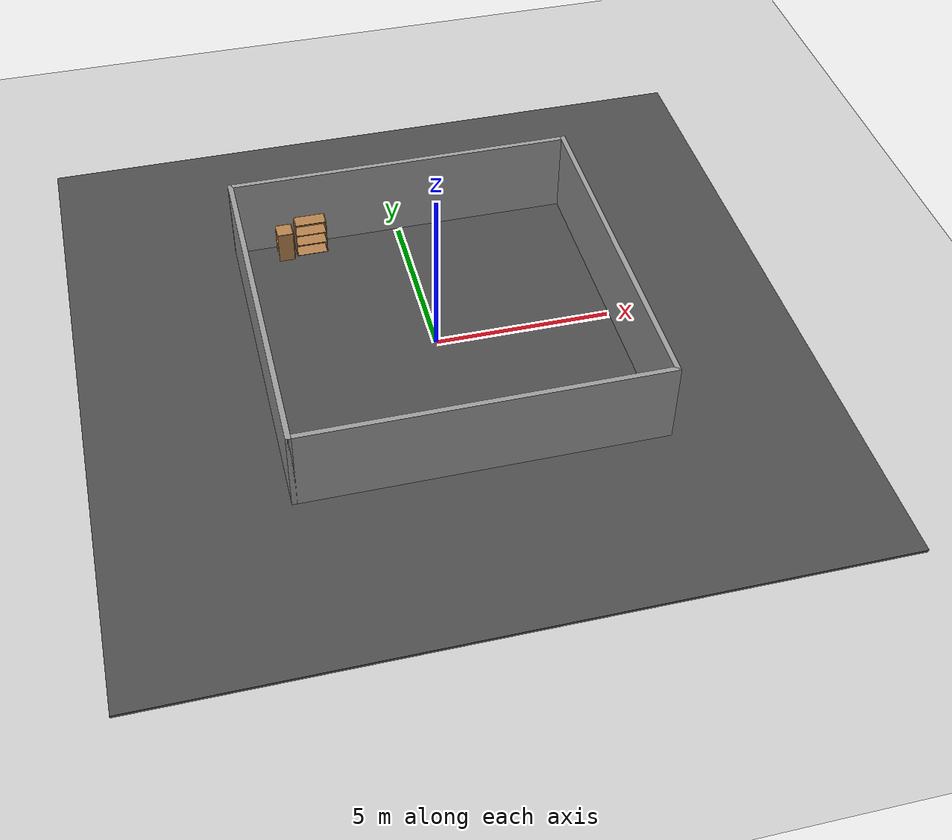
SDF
<sdf version="1.6">
 <world name="default">
  <light name="sun" type="directional">
   <pose>0 0 10 0 -0 0</pose>
   <diffuse>0.8 0.8 0.8 1</diffuse>
   <specular>0.2 0.2 0.2 1</specular>
   <attenuation>
    <range>1000</range>
    <constant>0.9</constant>
    <linear>0.01</linear>
    <quadratic>0.001</quadratic>
   </attenuation>
   <direction>-0.5 0.1 -0.9</direction>
  </light>
  <model name="ground_plane">
   <static>1</static>
   <link name="link">
    <collision name="collision">
     <geometry><plane><normal>0 0 1</normal><size>100 100</size></plane></geometry>
     <surface><friction><ode><mu>100</mu><mu2>50</mu2></ode></friction></surface>
    </collision>
    <visual name="visual">
     <cast_shadows>0</cast_shadows>
     <geometry><plane><normal>0 0 1</normal><size>100 100</size></plane></geometry>
     <material>
      <script><uri>file://media/materials/scripts/gazebo.material</uri><name>Gazebo/Grey</name></script>
     </material>
    </visual>
   </link>
  </model>
  <gravity>0 0 -9.8</gravity>
  <magnetic_field>6e-06 2.3e-05 -4.2e-05</magnetic_field>
  <atmosphere type="adiabatic"/>
  <physics name="default_physics" default="0" type="ode">
   <max_step_size>0.001</max_step_size>
   <real_time_factor>1</real_time_factor>
   <real_time_update_rate>1000</real_time_update_rate>
  </physics>
  <scene><ambient>0.4 0.4 0.4 1</ambient><background>0.7 0.7 0.7 1</background><shadows>1</shadows></scene>
  <audio><device>default</device></audio>
  <spherical_coordinates>
   <surface_model>EARTH_WGS84</surface_model>
   <latitude_deg>0</latitude_deg>
   <longitude_deg>0</longitude_deg>
   <elevation>0</elevation>
   <heading_deg>0</heading_deg>
  </spherical_coordinates>
  <model name="Untitled">
   <pose>0.11691 0.149329 0 0 -0 0</pose>
   <link name="Wall_0">
    <collision name="Wall_0_Collision">
     <geometry><box><size>10.15 0.15 2.5</size></box></geometry>
     <pose>0 0 1.25 0 -0 0</pose>
    </collision>
    <visual name="Wall_0_Visual">
     <pose>0 0 1.25 0 -0 0</pose>
     <geometry><box><size>10.15 0.15 2.5</size></box></geometry>
     <material>
      <script><uri>file://media/materials/scripts/gazebo.material</uri><name>Gazebo/Grey</name></script>
      <ambient>1 1 1 1</ambient>
     </material>
     <meta><layer>0</layer></meta>
    </visual>
    <pose>5 0 0 0 -0 1.5708</pose>
   </link>
   <link name="Wall_3">
    <collision name="Wall_3_Collision">
     <geometry><box><size>10.15 0.15 2.5</size></box></geometry>
     <pose>0 0 1.25 0 -0 0</pose>
    </collision>
    <visual name="Wall_3_Visual">
     <pose>0 0 1.25 0 -0 0</pose>
     <geometry><box><size>10.15 0.15 2.5</size></box></geometry>
     <material>
      <script><uri>file://media/materials/scripts/gazebo.material</uri><name>Gazebo/Grey</name></script>
      <ambient>1 1 1 1</ambient>
     </material>
     <meta><layer>0</layer></meta>
    </visual>
    <pose>0 5 0 0 -0 3.14159</pose>
   </link>
   <link name="Wall_7">
    <collision name="Wall_7_Collision">
     <geometry><box><size>10.15 0.15 2.5</size></box></geometry>
     <pose>0 0 1.25 0 -0 0</pose>
    </collision>
    <visual name="Wall_7_Visual">
     <pose>0 0 1.25 0 -0 0</pose>
     <geometry><box><size>10.15 0.15 2.5</size></box></geometry>
     <material>
      <script><uri>file://media/materials/scripts/gazebo.material</uri><name>Gazebo/Grey</name></script>
      <ambient>1 1 1 1</ambient>
     </material>
     <meta><layer>0</layer></meta>
    </visual>
    <pose>-5 0 0 0 -0 -1.5708</pose>
   </link>
   <link name="Wall_9">
    <collision name="Wall_9_Collision">
     <geometry><box><size>10.15 0.15 2.5</size></box></geometry>
     <pose>0 0 1.25 0 -0 0</pose>
    </collision>
    <visual name="Wall_9_Visual">
     <pose>0 0 1.25 0 -0 0</pose>
     <geometry><box><size>10.15 0.15 2.5</size></box></geometry>
     <material>
      <script><uri>file://media/materials/scripts/gazebo.material</uri><name>Gazebo/Grey</name></script>
      <ambient>1 1 1 1</ambient>
     </material>
     <meta><layer>0</layer></meta>
    </visual>
    <pose>0 -5 0 0 -0 0</pose>
   </link>
   <static>1</static>
  </model>
  <model name="bookshelf">
   <static>1</static>
   <link name="link">
    <inertial><mass>1</mass></inertial>
    <collision name="back">
     <pose>0 0.005 0.6 0 -0 0</pose>
     <geometry><box><size>0.9 0.01 1.2</size></box></geometry>
    </collision>
    <visual name="visual1">
     <pose>0 0.005 0.6 0 -0 0</pose>
     <geometry><box><size>0.9 0.01 1.2</size></box></geometry>
     <material>
      <script><uri>file://media/materials/scripts/gazebo.material</uri><name>Gazebo/Wood</name></script>
     </material>
    </visual>
    <collision name="left_side">
     <pose>0.45 -0.195 0.6 0 -0 0</pose>
     <geometry><box><size>0.02 0.4 1.2</size></box></geometry>
    </collision>
    <visual name="visual2">
     <pose>0.45 -0.195 0.6 0 -0 0</pose>
     <geometry><box><size>0.02 0.4 1.2</size></box></geometry>
     <material>
      <script><uri>file://media/materials/scripts/gazebo.material</uri><name>Gazebo/Wood</name></script>
     </material>
    </visual>
    <collision name="right_side">
     <pose>-0.45 -0.195 0.6 0 -0 0</pose>
     <geometry><box><size>0.02 0.4 1.2</size></box></geometry>
    </collision>
    <visual name="visual3">
     <pose>-0.45 -0.195 0.6 0 -0 0</pose>
     <geometry><box><size>0.02 0.4 1.2</size></box></geometry>
     <material>
      <script><uri>file://media/materials/scripts/gazebo.material</uri><name>Gazebo/Wood</name></script>
     </material>
    </visual>
    <collision name="bottom">
     <pose>0 -0.195 0.03 0 -0 0</pose>
     <geometry><box><size>0.88 0.4 0.06</size></box></geometry>
    </collision>
    <visual name="visual4">
     <pose>0 -0.195 0.03 0 -0 0</pose>
     <geometry><box><size>0.88 0.4 0.06</size></box></geometry>
     <material>
      <script><uri>file://media/materials/scripts/gazebo.material</uri><name>Gazebo/Wood</name></script>
     </material>
    </visual>
    <collision name="top">
     <pose>0 -0.195 1.19 0 -0 0</pose>
     <geometry><box><size>0.88 0.4 0.02</size></box></geometry>
    </collision>
    <visual name="visual5">
     <pose>0 -0.195 1.19 0 -0 0</pose>
     <geometry><box><size>0.88 0.4 0.02</size></box></geometry>
     <material>
      <script><uri>file://media/materials/scripts/gazebo.material</uri><name>Gazebo/Wood</name></script>
     </material>
    </visual>
    <collision name="low_shelf">
     <pose>0 -0.195 0.43 0 -0 0</pose>
     <geometry><box><size>0.88 0.4 0.02</size></box></geometry>
    </collision>
    <visual name="visual6">
     <pose>0 -0.195 0.43 0 -0 0</pose>
     <geometry><box><size>0.88 0.4 0.02</size></box></geometry>
     <material>
      <script><uri>file://media/materials/scripts/gazebo.material</uri><name>Gazebo/Wood</name></script>
     </material>
    </visual>
    <collision name="high_shelf">
     <pose>0 -0.195 0.8 0 -0 0</pose>
     <geometry><box><size>0.88 0.4 0.02</size></box></geometry>
    </collision>
    <visual name="visual7">
     <pose>0 -0.195 0.8 0 -0 0</pose>
     <geometry><box><size>0.88 0.4 0.02</size></box></geometry>
     <material>
      <script><uri>file://media/materials/scripts/gazebo.material</uri><name>Gazebo/Wood</name></script>
     </material>
    </visual>
   </link>
   <pose>-2.72611 4.9059 0 0 -0 0</pose>
  </model>
  <model name="cabinet">
   <static>1</static>
   <link name="cabinet_bottom_plate">
    <inertial>
     <pose>0 0 -1 0 -0 0</pose>
     <inertia><ixx>2.05</ixx><ixy>0</ixy><ixz>0</ixz><iyy>2.05</iyy><iyz>0</iyz><izz>2.05</izz></inertia>
     <mass>25</mass>
    </inertial>
    <collision name="cabinet_bottom_plate_geom">
     <pose>0 0 0.01 0 -0 0</pose>
     <geometry><box><size>0.45 0.45 0.02</size></box></geometry>
    </collision>
    <visual name="cabinet_bottom_plate_geom_visual">
     <pose>0 0 0.01 0 -0 0</pose>
     <geometry><box><size>0.45 0.45 0.02</size></box></geometry>
     <material>
      <script><uri>file://media/materials/scripts/gazebo.material</uri><name>Gazebo/Wood</name></script>
     </material>
    </visual>
    <collision name="cabinet_bottom_plate_geom_cabinet_back_plate">
     <pose>0.235 0 0.51 0 -0 0</pose>
     <geometry><box><size>0.02 0.45 1.02</size></box></geometry>
    </collision>
    <visual name="cabinet_bottom_plate_geom_cabinet_back_plate_visual">
     <pose>0.235 0 0.51 0 -0 0</pose>
     <geometry><box><size>0.02 0.45 1.02</size></box></geometry>
     <material>
      <script><uri>file://media/materials/scripts/gazebo.material</uri><name>Gazebo/Wood</name></script>
     </material>
    </visual>
    <collision name="cabinet_bottom_plate_geom_cabinet_left_plate">
     <pose>0 0.235 0.51 0 -0 0</pose>
     <geometry><box><size>0.45 0.02 1.02</size></box></geometry>
    </collision>
    <visual name="cabinet_bottom_plate_geom_cabinet_left_plate_visual">
     <pose>0 0.235 0.51 0 -0 0</pose>
     <geometry><box><size>0.45 0.02 1.02</size></box></geometry>
     <material>
      <script><uri>file://media/materials/scripts/gazebo.material</uri><name>Gazebo/Wood</name></script>
     </material>
    </visual>
    <collision name="cabinet_bottom_plate_geom_cabinet_middle_plate">
     <pose>0 0 0.51 0 -0 0</pose>
     <geometry><box><size>0.45 0.45 0.02</size></box></geometry>
    </collision>
    <visual name="cabinet_bottom_plate_geom_cabinet_middle_plate_visual">
     <pose>0 0 0.51 0 -0 0</pose>
     <geometry><box><size>0.45 0.45 0.02</size></box></geometry>
     <material>
      <script><uri>file://media/materials/scripts/gazebo.material</uri><name>Gazebo/Wood</name></script>
     </material>
    </visual>
    <collision name="cabinet_bottom_plate_geom_cabinet_right_plate">
     <pose>0 -0.235 0.51 0 -0 0</pose>
     <geometry><box><size>0.45 0.02 1.02</size></box></geometry>
    </collision>
    <visual name="cabinet_bottom_plate_geom_cabinet_right_plate_visual">
     <pose>0 -0.235 0.51 0 -0 0</pose>
     <geometry><box><size>0.45 0.02 1.02</size></box></geometry>
     <material>
      <script><uri>file://media/materials/scripts/gazebo.material</uri><name>Gazebo/Wood</name></script>
     </material>
    </visual>
    <collision name="cabinet_bottom_plate_geom_cabinet_top_plate">
     <pose>0 0 1.01 0 -0 0</pose>
     <geometry><box><size>0.45 0.45 0.02</size></box></geometry>
    </collision>
    <visual name="cabinet_bottom_plate_geom_cabinet_top_plate_visual">
     <pose>0 0 1.01 0 -0 0</pose>
     <geometry><box><size>0.45 0.45 0.02</size></box></geometry>
     <material>
      <script><uri>file://media/materials/scripts/gazebo.material</uri><name>Gazebo/Wood</name></script>
     </material>
    </visual>
   </link>
   <pose>-3.51188 4.63842 0 0 -0 0</pose>
  </model>
  <model name="asphalt_plane">
   <static>1</static>
   <link name="link">
    <collision name="collision"><geometry><box><size>20 20 0.1</size></box></geometry></collision>
    <visual name="visual">
     <cast_shadows>0</cast_shadows>
     <geometry><box><size>20 20 0.1</size></box></geometry>
     <material>
      <script>
       <uri>model://asphalt_plane/materials/scripts</uri>
       <uri>model://asphalt_plane/materials/textures</uri>
       <name>vrc/asphalt</name>
      </script>
     </material>
    </visual>
   </link>
   <pose>0.057397 -0.016133 0 0 0 -0.000747</pose>
  </model>
  <model name="asphalt_plane">
   <static>1</static>
   <link name="link">
    <collision name="collision"><geometry><box><size>20 20 0.1</size></box></geometry></collision>
    <visual name="visual">
     <cast_shadows>0</cast_shadows>
     <geometry><box><size>20 20 0.1</size></box></geometry>
     <material>
      <script>
       <uri>model://asphalt_plane/materials/scripts</uri>
       <uri>model://asphalt_plane/materials/textures</uri>
       <name>vrc/asphalt</name>
      </script>
     </material>
    </visual>
   </link>
   <pose>0.057397 -0.016133 0 0 0 -0.000747</pose>
  </model>
  <model name="table">
   <static>1</static>
   <link name="link">
    <collision name="surface">
     <pose>0 0 1 0 -0 0</pose>
     <geometry><box><size>1.5 0.8 0.03</size></box></geometry>
     <surface><friction><ode><mu>0.6</mu><mu2>0.6</mu2></ode></friction></surface>
    </collision>
    <visual name="visual1">
     <pose>0 0 1 0 -0 0</pose>
     <geometry><box><size>1.5 0.8 0.03</size></box></geometry>
     <material>
      <script><uri>file://media/materials/scripts/gazebo.material</uri><name>Gazebo/Wood</name></script>
     </material>
    </visual>
    <collision name="front_left_leg">
     <pose>0.68 0.38 0.5 0 -0 0</pose>
     <geometry><cylinder><radius>0.02</radius><length>1</length></cylinder></geometry>
    </collision>
    <visual name="front_left_leg">
     <pose>0.68 0.38 0.5 0 -0 0</pose>
     <geometry><cylinder><radius>0.02</radius><length>1</length></cylinder></geometry>
     <material>
      <script><uri>file://media/materials/scripts/gazebo.material</uri><name>Gazebo/Grey</name></script>
     </material>
    </visual>
    <collision name="front_right_leg">
     <pose>0.68 -0.38 0.5 0 -0 0</pose>
     <geometry><cylinder><radius>0.02</radius><length>1</length></cylinder></geometry>
    </collision>
    <visual name="front_right_leg">
     <pose>0.68 -0.38 0.5 0 -0 0</pose>
     <geometry><cylinder><radius>0.02</radius><length>1</length></cylinder></geometry>
     <material>
      <script><uri>file://media/materials/scripts/gazebo.material</uri><name>Gazebo/Grey</name></script>
     </material>
    </visual>
    <collision name="back_right_leg">
     <pose>-0.68 -0.38 0.5 0 -0 0</pose>
     <geometry><cylinder><radius>0.02</radius><length>1</length></cylinder></geometry>
    </collision>
    <visual name="back_right_leg">
     <pose>-0.68 -0.38 0.5 0 -0 0</pose>
     <geometry><cylinder><radius>0.02</radius><length>1</length></cylinder></geometry>
     <material>
      <script><uri>file://media/materials/scripts/gazebo.material</uri><name>Gazebo/Grey</name></script>
     </material>
    </visual>
    <collision name="back_left_leg">
     <pose>-0.68 0.38 0.5 0 -0 0</pose>
     <geometry><cylinder><radius>0.02</radius><length>1</length></cylinder></geometry>
    </collision>
    <visual name="back_left_leg">
     <pose>-0.68 0.38 0.5 0 -0 0</pose>
     <geometry><cylinder><radius>0.02</radius><length>1</length></cylinder></geometry>
     <material>
      <script><uri>file://media/materials/scripts/gazebo.material</uri><name>Gazebo/Grey</name></script>
     </material>
    </visual>
   </link>
   <pose>-4.03697 -4.32444 0 0 -0 0</pose>
  </model>
  <model name="bookshelf_0">
   <static>1</static>
   <link name="link">
    <inertial><mass>1</mass></inertial>
    <collision name="back">
     <pose>0 0.005 0.6 0 -0 0</pose>
     <geometry><box><size>0.9 0.01 1.2</size></box></geometry>
    </collision>
    <visual name="visual1">
     <pose>0 0.005 0.6 0 -0 0</pose>
     <geometry><box><size>0.9 0.01 1.2</size></box></geometry>
     <material>
      <script><uri>file://media/materials/scripts/gazebo.material</uri><name>Gazebo/Wood</name></script>
     </material>
    </visual>
    <collision name="left_side">
     <pose>0.45 -0.195 0.6 0 -0 0</pose>
     <geometry><box><size>0.02 0.4 1.2</size></box></geometry>
    </collision>
    <visual name="visual2">
     <pose>0.45 -0.195 0.6 0 -0 0</pose>
     <geometry><box><size>0.02 0.4 1.2</size></box></geometry>
     <material>
      <script><uri>file://media/materials/scripts/gazebo.material</uri><name>Gazebo/Wood</name></script>
     </material>
    </visual>
    <collision name="right_side">
     <pose>-0.45 -0.195 0.6 0 -0 0</pose>
     <geometry><box><size>0.02 0.4 1.2</size></box></geometry>
    </collision>
    <visual name="visual3">
     <pose>-0.45 -0.195 0.6 0 -0 0</pose>
     <geometry><box><size>0.02 0.4 1.2</size></box></geometry>
     <material>
      <script><uri>file://media/materials/scripts/gazebo.material</uri><name>Gazebo/Wood</name></script>
     </material>
    </visual>
    <collision name="bottom">
     <pose>0 -0.195 0.03 0 -0 0</pose>
     <geometry><box><size>0.88 0.4 0.06</size></box></geometry>
    </collision>
    <visual name="visual4">
     <pose>0 -0.195 0.03 0 -0 0</pose>
     <geometry><box><size>0.88 0.4 0.06</size></box></geometry>
     <material>
      <script><uri>file://media/materials/scripts/gazebo.material</uri><name>Gazebo/Wood</name></script>
     </material>
    </visual>
    <collision name="top">
     <pose>0 -0.195 1.19 0 -0 0</pose>
     <geometry><box><size>0.88 0.4 0.02</size></box></geometry>
    </collision>
    <visual name="visual5">
     <pose>0 -0.195 1.19 0 -0 0</pose>
     <geometry><box><size>0.88 0.4 0.02</size></box></geometry>
     <material>
      <script><uri>file://media/materials/scripts/gazebo.material</uri><name>Gazebo/Wood</name></script>
     </material>
    </visual>
    <collision name="low_shelf">
     <pose>0 -0.195 0.43 0 -0 0</pose>
     <geometry><box><size>0.88 0.4 0.02</size></box></geometry>
    </collision>
    <visual name="visual6">
     <pose>0 -0.195 0.43 0 -0 0</pose>
     <geometry><box><size>0.88 0.4 0.02</size></box></geometry>
     <material>
      <script><uri>file://media/materials/scripts/gazebo.material</uri><name>Gazebo/Wood</name></script>
     </material>
    </visual>
    <collision name="high_shelf">
     <pose>0 -0.195 0.8 0 -0 0</pose>
     <geometry><box><size>0.88 0.4 0.02</size></box></geometry>
    </collision>
    <visual name="visual7">
     <pose>0 -0.195 0.8 0 -0 0</pose>
     <geometry><box><size>0.88 0.4 0.02</size></box></geometry>
     <material>
      <script><uri>file://media/materials/scripts/gazebo.material</uri><name>Gazebo/Wood</name></script>
     </material>
    </visual>
   </link>
   <pose>-2.79077 -4.71101 0 0 0 -3.1323</pose>
  </model>
 </world>
</sdf>
